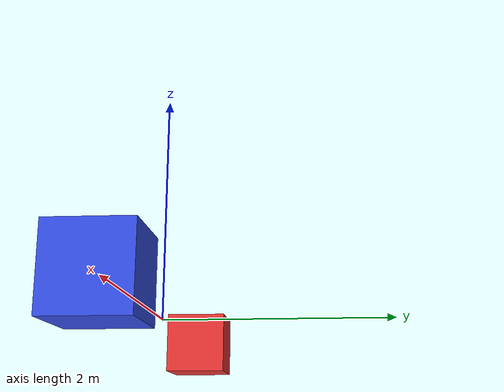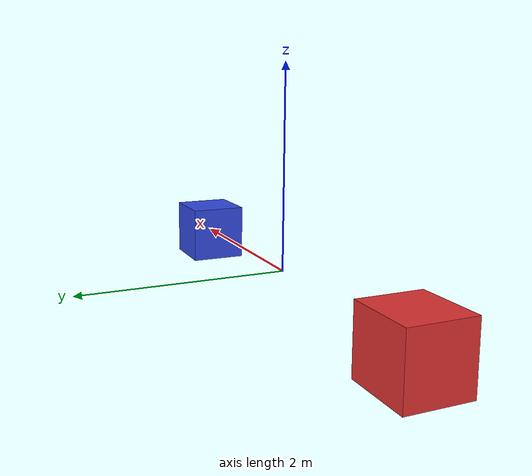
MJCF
<mujoco model="two_bodies">
  <option timestep="0.002" gravity="0 0 0">
    <flag contact="enable"/>
  </option>

  <default>
    <geom condim="3" friction="1 0.005 0.0001"
          solref="0.01 1" solimp="0.9 0.95 0.001"/>
  </default>

  <worldbody>
    <body name="body_a" pos="-2 0 0">
      <freejoint name="jnt_a"/>
      <geom type="box" size="0.3 0.3 0.3" mass="100" rgba="0.9 0.2 0.2 1"/>
    </body>
    <body name="body_b" pos="2 0 0">
      <freejoint name="jnt_b"/>
      <geom type="box" size="0.3 0.3 0.3" mass="100" rgba="0.2 0.3 0.9 1"/>
    </body>
  </worldbody>
</mujoco>
